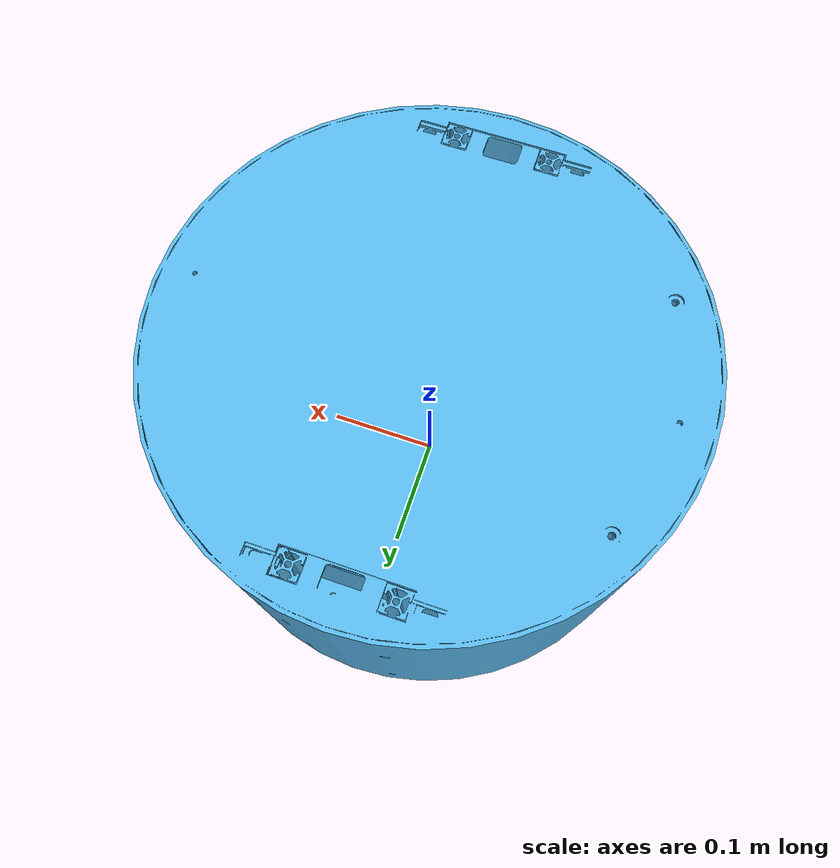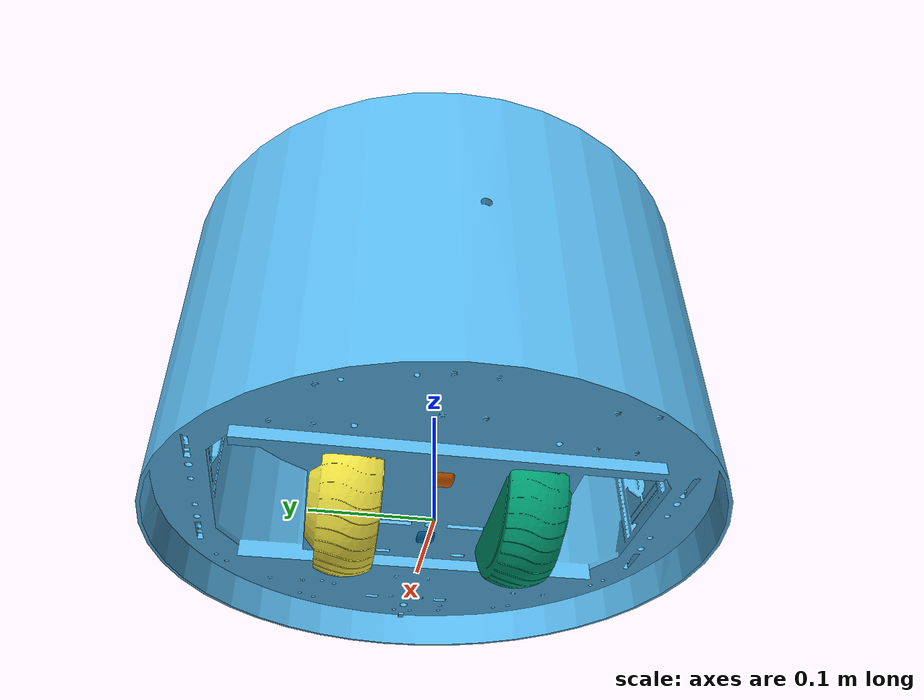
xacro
<?xml version="1.0"?>

<robot xmlns:xacro ="http://www.ros.org/wiki/xacro" name = "robo">
    <xacro:include filename="$(find robot_description)/urdf/robot_gazebo.xacro"/>
    <xacro:include filename="$(find robot_description)/urdf/robot_ros2_control.xacro"/>
    <link name="base_footprint"/>
    <link name="base_link">
        <inertial>
            <origin xyz="0 0 0.04" rpy="0.0 0.25 0.3" />
            <mass value="8.2573504e-01"/>
            <inertia ixx="2.2124416e-02" ixy="-1.2294101e-04" ixz="3.4938785e-04"
               iyy="2.1193702e-02" iyz="-5.0120904e-05"
               izz="2.0064271e-02" />
        </inertial>

        <visual>
            <origin rpy="0 0 0" xyz="0 0 0"/>
            <geometry>
                <mesh filename="package://robot_description/meshes/base_link.STL"/>
            </geometry>
        </visual>
        <collision>
            <origin rpy="0 0 0" xyz="0 0 0"/>
            <geometry>
                <mesh filename="package://robot_description/meshes/base_link.STL"/>
            </geometry>
        </collision>

    </link>

    <joint name="base_joint" type="fixed">
        <parent link="base_footprint" />
        <child link="base_link" />
        <origin xyz="0 0 0.033" rpy="0 0 0" />

    </joint>

    <link name= "wheel_right_link">
        <inertial>
            <origin xyz="0 -0.014 0" rpy="0 0 0" />
            <mass value="0.0530086090966721" />
            <inertia ixx="1.88176298336665E-05" ixy="-4.8444933029987E-10" ixz="1.88163708851143E-08"
               iyy="3.11510738647764E-05" iyz="-6.93560663069607E-11"
               izz="1.8801969558182E-05" />
        </inertial>
        <visual>
            <origin rpy="1.57 0 0" xyz="0 0 0"/>
            <geometry>
                <mesh filename="package://robot_description/meshes/wheel_right_link.STL"/>
            </geometry>
        </visual>
        <collision>
            <orgin xyz = "0 -0.015 0" rpy="1.57 0 0"/>
            <geometry>
                <sphere radius="0.033"/>
            </geometry>

        </collision>
    </link>

    <joint name="wheel_right_joint" type="continuous">
        <parent link="base_link" />
        <child link="wheel_right_link" />
        <axis xyz="0 1 0" />
        <origin xyz="0 -0.07 0" rpy="0 0 0" />
    </joint>

    <link name= "wheel_left_link">
        <inertial>
            <origin xyz="0 0.014 0" rpy="0 0 0" />
            <mass value="0.0530086043217644" />
            <inertia ixx="1.8792911368909E-05"  ixy="3.31256392204584E-10" ixz="-1.14082001662767E-08"
               iyy="3.11510738759073E-05" iyz="-3.60499245082192E-10"
               izz="1.88266886146847E-05" />
        </inertial>
        <visual>
            <origin rpy="-1.57 0 0" xyz="0 0 0"/>
            <geometry>
                <mesh filename="package://robot_description/meshes/wheel_left_link.STL"/>
            </geometry>
        </visual>
        <collision>
            <origin xyz ="0 0.015 0" rpy="1.57 0 0"/>
            <geometry>
                <sphere radius ="0.033"/>
            </geometry>
        </collision>
    </link>
    <joint name="wheel_left_joint" type="continuous">
        <parent link="base_link" />
        <child link="wheel_left_link" />
        <axis xyz="0 1 0" />
        <origin xyz="0 0.07 0" rpy="0 0 0" />
    </joint>

    <link name= "caster_front_link">
        <inertial>
            <origin xyz="3.89968128948481E-07 2.40073004698083E-07 0.00219173397061506" rpy="0 0 0" />
            <mass value="1.44379265037903E-06" />
            <inertia ixx="7.23075276010246E-11" ixy="-6.10956883467859E-16" ixz="2.22849693525031E-15"
               iyy="3.8713793085917E-11"  iyz="2.93909858781952E-15"
               izz="1.00967486676306E-10" />
        </inertial>
        <visual>
            <origin rpy="0 0 0" xyz="0 0 0"/>
            <geometry>
                <mesh filename="package://robot_description/meshes/caster_front_link.STL"/>
            </geometry>
        </visual>
        <collision>
            <origin xyz ="0 0 0" rpy="0 0 0"/>
            <geometry>
                <sphere radius ="0.005"/>
            </geometry>
        </collision>

    </link>

    <joint name="caster_front_joint" type="fixed">
        <parent link="base_link" />
        <child link="caster_front_link" />
        <origin xyz="0.04755 0 -0.0275" rpy="0 0 0" />
    </joint>

    <link name= "caster_rear_link">
        <inertial>
            <origin xyz="3.8996812895542E-07 2.40073004698083E-07 0.00219173397061509" rpy="0 0 0" />
            <mass value="1.44379265037902E-06" />
            <inertia ixx="7.23075276010246E-11" ixy="-6.10956872363424E-16" ixz="2.22849693527207E-15"
                iyy="3.87137930859167E-11" iyz="2.939098587861E-15"
               izz="1.00967486676306E-10" />
        </inertial>

        <visual>
            <origin rpy="0 0 0" xyz="0 0 0"/>
            <geometry>
                <mesh filename="package://robot_description/meshes/caster_rear_link.STL"/>
            </geometry>
        </visual>
        <collision>
            <origin xyz ="0 0 0" rpy="0 0 0"/>
            <geometry>
                <sphere radius ="0.005"/>
            </geometry>
        </collision>
    </link>

    <joint name="caster_rear_joint" type="fixed">
        <parent link="base_link" />
        <child link="caster_rear_link" />
        <origin xyz="-0.04755 0 -0.0275" rpy="0 0 0" />
    </joint>
</robot>
